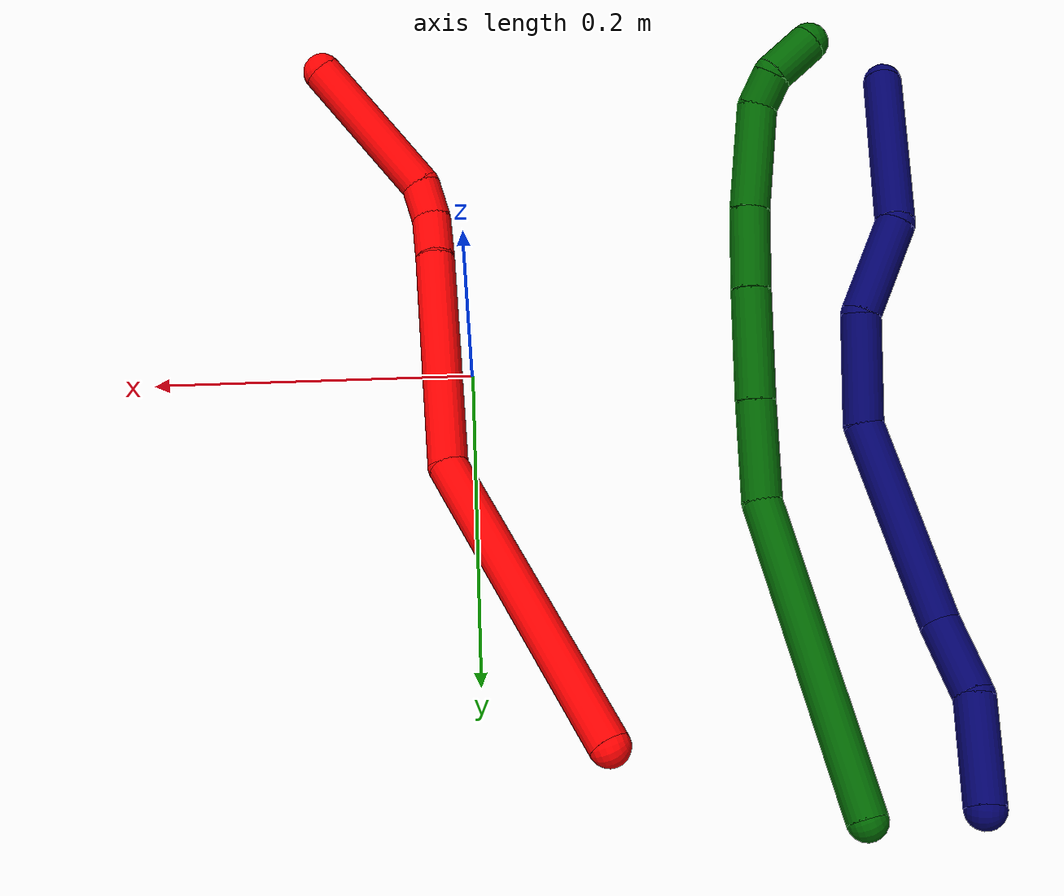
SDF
<sdf version="1.7">
 <world name="default">
  <model name="2">
   <static>0</static>
   <link name="2">
    <collision name="collision-cylinder-e_1_1_4">
     <pose>0.03027 -0.095128 0.023469 1.32892 0.299633 0.235375</pose>
     <geometry><cylinder><radius>0.0125</radius><length>0.205099</length></cylinder></geometry>
     <surface>
      <friction><ode><mu>1.16</mu><mu2>1.16</mu2><slip1>0</slip1><slip2>0</slip2></ode></friction>
      <contact><ode><kp>1e+06</kp><kd>1</kd><max_vel>0</max_vel><min_depth>0.001</min_depth></ode></contact>
     </surface>
    </collision>
    <visual name="visual-cylinder-e_1_1_4">
     <pose>0.03027 -0.095128 0.023469 1.32892 0.299633 0.235375</pose>
     <geometry><cylinder><radius>0.0125</radius><length>0.205099</length></cylinder></geometry>
     <material><ambient>1 0 0 1</ambient></material>
    </visual>
    <collision name="collision-cylinder-e_2_4_5">
     <pose>0.078178 -0.256707 0.03181 1.79462 0.253266 0.31644</pose>
     <geometry><cylinder><radius>0.0125</radius><length>0.140792</length></cylinder></geometry>
     <surface>
      <friction><ode><mu>1.16</mu><mu2>1.16</mu2><slip1>0</slip1><slip2>0</slip2></ode></friction>
      <contact><ode><kp>1e+06</kp><kd>1</kd><max_vel>0</max_vel><min_depth>0.001</min_depth></ode></contact>
     </surface>
    </collision>
    <visual name="visual-cylinder-e_2_4_5">
     <pose>0.078178 -0.256707 0.03181 1.79462 0.253266 0.31644</pose>
     <geometry><cylinder><radius>0.0125</radius><length>0.140792</length></cylinder></geometry>
     <material><ambient>1 0 0 1</ambient></material>
    </visual>
    <collision name="collision-cylinder-e_3_5_6">
     <pose>0.101157 -0.336719 0.014519 1.72908 0.370855 0.432908</pose>
     <geometry><cylinder><radius>0.0125</radius><length>0.029471</length></cylinder></geometry>
     <surface>
      <friction><ode><mu>1.16</mu><mu2>1.16</mu2><slip1>0</slip1><slip2>0</slip2></ode></friction>
      <contact><ode><kp>1e+06</kp><kd>1</kd><max_vel>0</max_vel><min_depth>0.001</min_depth></ode></contact>
     </surface>
    </collision>
    <visual name="visual-cylinder-e_3_5_6">
     <pose>0.101157 -0.336719 0.014519 1.72908 0.370855 0.432908</pose>
     <geometry><cylinder><radius>0.0125</radius><length>0.029471</length></cylinder></geometry>
     <material><ambient>1 0 0 1</ambient></material>
    </visual>
    <collision name="collision-cylinder-e_4_6_7">
     <pose>0.107379 -0.362482 0.011912 1.60698 0.072069 0.074722</pose>
     <geometry><cylinder><radius>0.0125</radius><length>0.02448</length></cylinder></geometry>
     <surface>
      <friction><ode><mu>1.16</mu><mu2>1.16</mu2><slip1>0</slip1><slip2>0</slip2></ode></friction>
      <contact><ode><kp>1e+06</kp><kd>1</kd><max_vel>0</max_vel><min_depth>0.001</min_depth></ode></contact>
     </surface>
    </collision>
    <visual name="visual-cylinder-e_4_6_7">
     <pose>0.107379 -0.362482 0.011912 1.60698 0.072069 0.074722</pose>
     <geometry><cylinder><radius>0.0125</radius><length>0.02448</length></cylinder></geometry>
     <material><ambient>1 0 0 1</ambient></material>
    </visual>
    <collision name="collision-cylinder-e_5_7_2">
     <pose>0.103815 -0.421677 0.028192 1.22894 -0.088891 -0.062742</pose>
     <geometry><cylinder><radius>0.0125</radius><length>0.100157</length></cylinder></geometry>
     <surface>
      <friction><ode><mu>1.16</mu><mu2>1.16</mu2><slip1>0</slip1><slip2>0</slip2></ode></friction>
      <contact><ode><kp>1e+06</kp><kd>1</kd><max_vel>0</max_vel><min_depth>0.001</min_depth></ode></contact>
     </surface>
    </collision>
    <visual name="visual-cylinder-e_5_7_2">
     <pose>0.103815 -0.421677 0.028192 1.22894 -0.088891 -0.062742</pose>
     <geometry><cylinder><radius>0.0125</radius><length>0.100157</length></cylinder></geometry>
     <material><ambient>1 0 0 1</ambient></material>
    </visual>
    <collision name="collision-sphere-2">
     <pose>0.099369 -0.468672 0.044914 0 -0 0</pose>
     <geometry><sphere><radius>0.0125</radius></sphere></geometry>
     <surface>
      <friction><ode><mu>1.16</mu><mu2>1.16</mu2><slip1>0</slip1><slip2>0</slip2></ode></friction>
      <contact><ode><kp>1e+06</kp><kd>1</kd><max_vel>0</max_vel><min_depth>0.001</min_depth></ode></contact>
     </surface>
    </collision>
    <visual name="visual-sphere-2">
     <pose>0.099369 -0.468672 0.044914 0 -0 0</pose>
     <geometry><sphere><radius>0.0125</radius></sphere></geometry>
     <material><ambient>1 0 0 1</ambient></material>
    </visual>
    <collision name="collision-sphere-7">
     <pose>0.10826 -0.374682 0.011471 0 -0 0</pose>
     <geometry><sphere><radius>0.0125</radius></sphere></geometry>
     <surface>
      <friction><ode><mu>1.16</mu><mu2>1.16</mu2><slip1>0</slip1><slip2>0</slip2></ode></friction>
      <contact><ode><kp>1e+06</kp><kd>1</kd><max_vel>0</max_vel><min_depth>0.001</min_depth></ode></contact>
     </surface>
    </collision>
    <visual name="visual-sphere-7">
     <pose>0.10826 -0.374682 0.011471 0 -0 0</pose>
     <geometry><sphere><radius>0.0125</radius></sphere></geometry>
     <material><ambient>1 0 0 1</ambient></material>
    </visual>
    <collision name="collision-sphere-6">
     <pose>0.106498 -0.350281 0.012354 0 -0 0</pose>
     <geometry><sphere><radius>0.0125</radius></sphere></geometry>
     <surface>
      <friction><ode><mu>1.16</mu><mu2>1.16</mu2><slip1>0</slip1><slip2>0</slip2></ode></friction>
      <contact><ode><kp>1e+06</kp><kd>1</kd><max_vel>0</max_vel><min_depth>0.001</min_depth></ode></contact>
     </surface>
    </collision>
    <visual name="visual-sphere-6">
     <pose>0.106498 -0.350281 0.012354 0 -0 0</pose>
     <geometry><sphere><radius>0.0125</radius></sphere></geometry>
     <material><ambient>1 0 0 1</ambient></material>
    </visual>
    <collision name="collision-sphere-5">
     <pose>0.095817 -0.323158 0.016683 0 -0 0</pose>
     <geometry><sphere><radius>0.0125</radius></sphere></geometry>
     <surface>
      <friction><ode><mu>1.16</mu><mu2>1.16</mu2><slip1>0</slip1><slip2>0</slip2></ode></friction>
      <contact><ode><kp>1e+06</kp><kd>1</kd><max_vel>0</max_vel><min_depth>0.001</min_depth></ode></contact>
     </surface>
    </collision>
    <visual name="visual-sphere-5">
     <pose>0.095817 -0.323158 0.016683 0 -0 0</pose>
     <geometry><sphere><radius>0.0125</radius></sphere></geometry>
     <material><ambient>1 0 0 1</ambient></material>
    </visual>
    <collision name="collision-sphere-1">
     <geometry><sphere><radius>0.0125</radius></sphere></geometry>
     <surface>
      <friction><ode><mu>1.16</mu><mu2>1.16</mu2><slip1>0</slip1><slip2>0</slip2></ode></friction>
      <contact><ode><kp>1e+06</kp><kd>1</kd><max_vel>0</max_vel><min_depth>0.001</min_depth></ode></contact>
     </surface>
    </collision>
    <visual name="visual-sphere-1">
     <geometry><sphere><radius>0.0125</radius></sphere></geometry>
     <material><ambient>1 0 0 1</ambient></material>
    </visual>
    <collision name="collision-sphere-4">
     <pose>0.060539 -0.190257 0.046937 0 -0 0</pose>
     <geometry><sphere><radius>0.0125</radius></sphere></geometry>
     <surface>
      <friction><ode><mu>1.16</mu><mu2>1.16</mu2><slip1>0</slip1><slip2>0</slip2></ode></friction>
      <contact><ode><kp>1e+06</kp><kd>1</kd><max_vel>0</max_vel><min_depth>0.001</min_depth></ode></contact>
     </surface>
    </collision>
    <visual name="visual-sphere-4">
     <pose>0.060539 -0.190257 0.046937 0 -0 0</pose>
     <geometry><sphere><radius>0.0125</radius></sphere></geometry>
     <material><ambient>1 0 0 1</ambient></material>
    </visual>
    <inertial>
     <pose>0.066446 -0.233369 0.02567 0 -0 0</pose>
     <mass>0.5</mass>
     <inertia>
      <ixx>0.001224</ixx>
      <ixy>0</ixy>
      <ixz>0</ixz>
      <iyy>0.000409</iyy>
      <iyz>0</iyz>
      <izz>0.000722</izz>
     </inertia>
    </inertial>
   </link>
   <pose>-0.071509 0.246716 0.045144 -2.56804 1.19625 -2.27744</pose>
  </model>
  <model name="6">
   <static>0</static>
   <link name="6">
    <collision name="collision-cylinder-e_1_1_4">
     <pose>0.039777 -0.089748 0.006569 1.49773 0.416199 0.387604</pose>
     <geometry><cylinder><radius>0.0125</radius><length>0.196775</length></cylinder></geometry>
     <surface>
      <friction><ode><mu>1.16</mu><mu2>1.16</mu2><slip1>0</slip1><slip2>0</slip2></ode></friction>
      <contact><ode><kp>1e+06</kp><kd>1</kd><max_vel>0</max_vel><min_depth>0.001</min_depth></ode></contact>
     </surface>
    </collision>
    <visual name="visual-cylinder-e_1_1_4">
     <pose>0.039777 -0.089748 0.006569 1.49773 0.416199 0.387604</pose>
     <geometry><cylinder><radius>0.0125</radius><length>0.196775</length></cylinder></geometry>
     <material><ambient>0 0.392157 0.003922 1</ambient></material>
    </visual>
    <collision name="collision-cylinder-e_2_4_5">
     <pose>0.095198 -0.204232 0.022876 1.19577 0.531928 0.366883</pose>
     <geometry><cylinder><radius>0.0125</radius><length>0.061691</length></cylinder></geometry>
     <surface>
      <friction><ode><mu>1.16</mu><mu2>1.16</mu2><slip1>0</slip1><slip2>0</slip2></ode></friction>
      <contact><ode><kp>1e+06</kp><kd>1</kd><max_vel>0</max_vel><min_depth>0.001</min_depth></ode></contact>
     </surface>
    </collision>
    <visual name="visual-cylinder-e_2_4_5">
     <pose>0.095198 -0.204232 0.022876 1.19577 0.531928 0.366883</pose>
     <geometry><cylinder><radius>0.0125</radius><length>0.061691</length></cylinder></geometry>
     <material><ambient>0 0.392157 0.003922 1</ambient></material>
    </visual>
    <collision name="collision-cylinder-e_3_5_6">
     <pose>0.127852 -0.256783 0.04426 1.17425 0.513568 0.345951</pose>
     <geometry><cylinder><radius>0.0125</radius><length>0.069242</length></cylinder></geometry>
     <surface>
      <friction><ode><mu>1.16</mu><mu2>1.16</mu2><slip1>0</slip1><slip2>0</slip2></ode></friction>
      <contact><ode><kp>1e+06</kp><kd>1</kd><max_vel>0</max_vel><min_depth>0.001</min_depth></ode></contact>
     </surface>
    </collision>
    <visual name="visual-cylinder-e_3_5_6">
     <pose>0.127852 -0.256783 0.04426 1.17425 0.513568 0.345951</pose>
     <geometry><cylinder><radius>0.0125</radius><length>0.069242</length></cylinder></geometry>
     <material><ambient>0 0.392157 0.003922 1</ambient></material>
    </visual>
    <collision name="collision-cylinder-e_4_6_7">
     <pose>0.156535 -0.305345 0.065009 1.15735 0.475801 0.31422</pose>
     <geometry><cylinder><radius>0.0125</radius><length>0.050972</length></cylinder></geometry>
     <surface>
      <friction><ode><mu>1.16</mu><mu2>1.16</mu2><slip1>0</slip1><slip2>0</slip2></ode></friction>
      <contact><ode><kp>1e+06</kp><kd>1</kd><max_vel>0</max_vel><min_depth>0.001</min_depth></ode></contact>
     </surface>
    </collision>
    <visual name="visual-cylinder-e_4_6_7">
     <pose>0.156535 -0.305345 0.065009 1.15735 0.475801 0.31422</pose>
     <geometry><cylinder><radius>0.0125</radius><length>0.050972</length></cylinder></geometry>
     <material><ambient>0 0.392157 0.003922 1</ambient></material>
    </visual>
    <collision name="collision-cylinder-e_5_7_8">
     <pose>0.183242 -0.352238 0.088683 1.06236 0.465436 0.276711</pose>
     <geometry><cylinder><radius>0.0125</radius><length>0.066992</length></cylinder></geometry>
     <surface>
      <friction><ode><mu>1.16</mu><mu2>1.16</mu2><slip1>0</slip1><slip2>0</slip2></ode></friction>
      <contact><ode><kp>1e+06</kp><kd>1</kd><max_vel>0</max_vel><min_depth>0.001</min_depth></ode></contact>
     </surface>
    </collision>
    <visual name="visual-cylinder-e_5_7_8">
     <pose>0.183242 -0.352238 0.088683 1.06236 0.465436 0.276711</pose>
     <geometry><cylinder><radius>0.0125</radius><length>0.066992</length></cylinder></geometry>
     <material><ambient>0 0.392157 0.003922 1</ambient></material>
    </visual>
    <collision name="collision-cylinder-e_6_8_9">
     <pose>0.203704 -0.383526 0.111391 0.563563 0.513551 0.151729</pose>
     <geometry><cylinder><radius>0.0125</radius><length>0.022101</length></cylinder></geometry>
     <surface>
      <friction><ode><mu>1.16</mu><mu2>1.16</mu2><slip1>0</slip1><slip2>0</slip2></ode></friction>
      <contact><ode><kp>1e+06</kp><kd>1</kd><max_vel>0</max_vel><min_depth>0.001</min_depth></ode></contact>
     </surface>
    </collision>
    <visual name="visual-cylinder-e_6_8_9">
     <pose>0.203704 -0.383526 0.111391 0.563563 0.513551 0.151729</pose>
     <geometry><cylinder><radius>0.0125</radius><length>0.022101</length></cylinder></geometry>
     <material><ambient>0 0.392157 0.003922 1</ambient></material>
    </visual>
    <collision name="collision-cylinder-e_7_9_2">
     <pose>0.209528 -0.395737 0.134002 0.454326 0.024493 0.005662</pose>
     <geometry><cylinder><radius>0.0125</radius><length>0.032227</length></cylinder></geometry>
     <surface>
      <friction><ode><mu>1.16</mu><mu2>1.16</mu2><slip1>0</slip1><slip2>0</slip2></ode></friction>
      <contact><ode><kp>1e+06</kp><kd>1</kd><max_vel>0</max_vel><min_depth>0.001</min_depth></ode></contact>
     </surface>
    </collision>
    <visual name="visual-cylinder-e_7_9_2">
     <pose>0.209528 -0.395737 0.134002 0.454326 0.024493 0.005662</pose>
     <geometry><cylinder><radius>0.0125</radius><length>0.032227</length></cylinder></geometry>
     <material><ambient>0 0.392157 0.003922 1</ambient></material>
    </visual>
    <collision name="collision-sphere-2">
     <pose>0.209922 -0.402806 0.148477 0 -0 0</pose>
     <geometry><sphere><radius>0.0125</radius></sphere></geometry>
     <surface>
      <friction><ode><mu>1.16</mu><mu2>1.16</mu2><slip1>0</slip1><slip2>0</slip2></ode></friction>
      <contact><ode><kp>1e+06</kp><kd>1</kd><max_vel>0</max_vel><min_depth>0.001</min_depth></ode></contact>
     </surface>
    </collision>
    <visual name="visual-sphere-2">
     <pose>0.209922 -0.402806 0.148477 0 -0 0</pose>
     <geometry><sphere><radius>0.0125</radius></sphere></geometry>
     <material><ambient>0 0.392157 0.003922 1</ambient></material>
    </visual>
    <collision name="collision-sphere-9">
     <pose>0.209133 -0.388668 0.119528 0 -0 0</pose>
     <geometry><sphere><radius>0.0125</radius></sphere></geometry>
     <surface>
      <friction><ode><mu>1.16</mu><mu2>1.16</mu2><slip1>0</slip1><slip2>0</slip2></ode></friction>
      <contact><ode><kp>1e+06</kp><kd>1</kd><max_vel>0</max_vel><min_depth>0.001</min_depth></ode></contact>
     </surface>
    </collision>
    <visual name="visual-sphere-9">
     <pose>0.209133 -0.388668 0.119528 0 -0 0</pose>
     <geometry><sphere><radius>0.0125</radius></sphere></geometry>
     <material><ambient>0 0.392157 0.003922 1</ambient></material>
    </visual>
    <collision name="collision-sphere-4">
     <pose>0.079553 -0.179496 0.013139 0 -0 0</pose>
     <geometry><sphere><radius>0.0125</radius></sphere></geometry>
     <surface>
      <friction><ode><mu>1.16</mu><mu2>1.16</mu2><slip1>0</slip1><slip2>0</slip2></ode></friction>
      <contact><ode><kp>1e+06</kp><kd>1</kd><max_vel>0</max_vel><min_depth>0.001</min_depth></ode></contact>
     </surface>
    </collision>
    <visual name="visual-sphere-4">
     <pose>0.079553 -0.179496 0.013139 0 -0 0</pose>
     <geometry><sphere><radius>0.0125</radius></sphere></geometry>
     <material><ambient>0 0.392157 0.003922 1</ambient></material>
    </visual>
    <collision name="collision-sphere-1">
     <geometry><sphere><radius>0.0125</radius></sphere></geometry>
     <surface>
      <friction><ode><mu>1.16</mu><mu2>1.16</mu2><slip1>0</slip1><slip2>0</slip2></ode></friction>
      <contact><ode><kp>1e+06</kp><kd>1</kd><max_vel>0</max_vel><min_depth>0.001</min_depth></ode></contact>
     </surface>
    </collision>
    <visual name="visual-sphere-1">
     <geometry><sphere><radius>0.0125</radius></sphere></geometry>
     <material><ambient>0 0.392157 0.003922 1</ambient></material>
    </visual>
    <collision name="collision-sphere-8">
     <pose>0.198275 -0.378384 0.103255 0 -0 0</pose>
     <geometry><sphere><radius>0.0125</radius></sphere></geometry>
     <surface>
      <friction><ode><mu>1.16</mu><mu2>1.16</mu2><slip1>0</slip1><slip2>0</slip2></ode></friction>
      <contact><ode><kp>1e+06</kp><kd>1</kd><max_vel>0</max_vel><min_depth>0.001</min_depth></ode></contact>
     </surface>
    </collision>
    <visual name="visual-sphere-8">
     <pose>0.198275 -0.378384 0.103255 0 -0 0</pose>
     <geometry><sphere><radius>0.0125</radius></sphere></geometry>
     <material><ambient>0 0.392157 0.003922 1</ambient></material>
    </visual>
    <collision name="collision-sphere-5">
     <pose>0.110843 -0.228968 0.032613 0 -0 0</pose>
     <geometry><sphere><radius>0.0125</radius></sphere></geometry>
     <surface>
      <friction><ode><mu>1.16</mu><mu2>1.16</mu2><slip1>0</slip1><slip2>0</slip2></ode></friction>
      <contact><ode><kp>1e+06</kp><kd>1</kd><max_vel>0</max_vel><min_depth>0.001</min_depth></ode></contact>
     </surface>
    </collision>
    <visual name="visual-sphere-5">
     <pose>0.110843 -0.228968 0.032613 0 -0 0</pose>
     <geometry><sphere><radius>0.0125</radius></sphere></geometry>
     <material><ambient>0 0.392157 0.003922 1</ambient></material>
    </visual>
    <collision name="collision-sphere-6">
     <pose>0.144861 -0.284598 0.055907 0 -0 0</pose>
     <geometry><sphere><radius>0.0125</radius></sphere></geometry>
     <surface>
      <friction><ode><mu>1.16</mu><mu2>1.16</mu2><slip1>0</slip1><slip2>0</slip2></ode></friction>
      <contact><ode><kp>1e+06</kp><kd>1</kd><max_vel>0</max_vel><min_depth>0.001</min_depth></ode></contact>
     </surface>
    </collision>
    <visual name="visual-sphere-6">
     <pose>0.144861 -0.284598 0.055907 0 -0 0</pose>
     <geometry><sphere><radius>0.0125</radius></sphere></geometry>
     <material><ambient>0 0.392157 0.003922 1</ambient></material>
    </visual>
    <collision name="collision-sphere-7">
     <pose>0.168209 -0.326091 0.074111 0 -0 0</pose>
     <geometry><sphere><radius>0.0125</radius></sphere></geometry>
     <surface>
      <friction><ode><mu>1.16</mu><mu2>1.16</mu2><slip1>0</slip1><slip2>0</slip2></ode></friction>
      <contact><ode><kp>1e+06</kp><kd>1</kd><max_vel>0</max_vel><min_depth>0.001</min_depth></ode></contact>
     </surface>
    </collision>
    <visual name="visual-sphere-7">
     <pose>0.168209 -0.326091 0.074111 0 -0 0</pose>
     <geometry><sphere><radius>0.0125</radius></sphere></geometry>
     <material><ambient>0 0.392157 0.003922 1</ambient></material>
    </visual>
    <inertial>
     <pose>0.108124 -0.216861 0.043607 0 -0 0</pose>
     <mass>0.5</mass>
     <inertia>
      <ixx>0.000892</ixx>
      <ixy>0</ixy>
      <ixz>0</ixz>
      <iyy>0.000413</iyy>
      <iyz>0</iyz>
      <izz>0.000369</izz>
     </inertia>
    </inertial>
   </link>
   <pose>-0.217941 0.287982 0.011499 1.03046 -1.11685 -0.783943</pose>
  </model>
  <model name="7">
   <static>0</static>
   <link name="7">
    <collision name="collision-cylinder-e_1_1_4">
     <pose>0.001734 -0.031617 -0.007526 1.80449 0.053292 0.067457</pose>
     <geometry><cylinder><radius>0.0125</radius><length>0.065093</length></cylinder></geometry>
     <surface>
      <friction><ode><mu>1.16</mu><mu2>1.16</mu2><slip1>0</slip1><slip2>0</slip2></ode></friction>
      <contact><ode><kp>1e+06</kp><kd>1</kd><max_vel>0</max_vel><min_depth>0.001</min_depth></ode></contact>
     </surface>
    </collision>
    <visual name="visual-cylinder-e_1_1_4">
     <pose>0.001734 -0.031617 -0.007526 1.80449 0.053292 0.067457</pose>
     <geometry><cylinder><radius>0.0125</radius><length>0.065093</length></cylinder></geometry>
     <material><ambient>0.003922 0 0.403922 1</ambient></material>
    </visual>
    <collision name="collision-cylinder-e_2_4_5">
     <pose>0.002874 -0.084153 -0.028847 2.15375 -0.023688 -0.04399</pose>
     <geometry><cylinder><radius>0.0125</radius><length>0.050131</length></cylinder></geometry>
     <surface>
      <friction><ode><mu>1.16</mu><mu2>1.16</mu2><slip1>0</slip1><slip2>0</slip2></ode></friction>
      <contact><ode><kp>1e+06</kp><kd>1</kd><max_vel>0</max_vel><min_depth>0.001</min_depth></ode></contact>
     </surface>
    </collision>
    <visual name="visual-cylinder-e_2_4_5">
     <pose>0.002874 -0.084153 -0.028847 2.15375 -0.023688 -0.04399</pose>
     <geometry><cylinder><radius>0.0125</radius><length>0.050131</length></cylinder></geometry>
     <material><ambient>0.003922 0 0.403922 1</ambient></material>
    </visual>
    <collision name="collision-cylinder-e_3_5_6">
     <pose>0.020503 -0.160827 -0.070304 2.03136 0.284832 0.454429</pose>
     <geometry><cylinder><radius>0.0125</radius><length>0.129705</length></cylinder></geometry>
     <surface>
      <friction><ode><mu>1.16</mu><mu2>1.16</mu2><slip1>0</slip1><slip2>0</slip2></ode></friction>
      <contact><ode><kp>1e+06</kp><kd>1</kd><max_vel>0</max_vel><min_depth>0.001</min_depth></ode></contact>
     </surface>
    </collision>
    <visual name="visual-cylinder-e_3_5_6">
     <pose>0.020503 -0.160827 -0.070304 2.03136 0.284832 0.454429</pose>
     <geometry><cylinder><radius>0.0125</radius><length>0.129705</length></cylinder></geometry>
     <material><ambient>0.003922 0 0.403922 1</ambient></material>
    </visual>
    <collision name="collision-cylinder-e_4_6_7">
     <pose>0.050622 -0.248534 -0.10039 1.64651 0.355439 0.382771</pose>
     <geometry><cylinder><radius>0.0125</radius><length>0.068364</length></cylinder></geometry>
     <surface>
      <friction><ode><mu>1.16</mu><mu2>1.16</mu2><slip1>0</slip1><slip2>0</slip2></ode></friction>
      <contact><ode><kp>1e+06</kp><kd>1</kd><max_vel>0</max_vel><min_depth>0.001</min_depth></ode></contact>
     </surface>
    </collision>
    <visual name="visual-cylinder-e_4_6_7">
     <pose>0.050622 -0.248534 -0.10039 1.64651 0.355439 0.382771</pose>
     <geometry><cylinder><radius>0.0125</radius><length>0.068364</length></cylinder></geometry>
     <material><ambient>0.003922 0 0.403922 1</ambient></material>
    </visual>
    <collision name="collision-cylinder-e_5_7_8">
     <pose>0.062517 -0.312029 -0.09711 1.39188 -3e-06 -3e-06</pose>
     <geometry><cylinder><radius>0.0125</radius><length>0.064106</length></cylinder></geometry>
     <surface>
      <friction><ode><mu>1.16</mu><mu2>1.16</mu2><slip1>0</slip1><slip2>0</slip2></ode></friction>
      <contact><ode><kp>1e+06</kp><kd>1</kd><max_vel>0</max_vel><min_depth>0.001</min_depth></ode></contact>
     </surface>
    </collision>
    <visual name="visual-cylinder-e_5_7_8">
     <pose>0.062517 -0.312029 -0.09711 1.39188 -3e-06 -3e-06</pose>
     <geometry><cylinder><radius>0.0125</radius><length>0.064106</length></cylinder></geometry>
     <material><ambient>0.003922 0 0.403922 1</ambient></material>
    </visual>
    <collision name="collision-cylinder-e_6_8_2">
     <pose>0.05443 -0.401858 -0.108581 1.85735 -0.132305 -0.176712</pose>
     <geometry><cylinder><radius>0.0125</radius><length>0.122603</length></cylinder></geometry>
     <surface>
      <friction><ode><mu>1.16</mu><mu2>1.16</mu2><slip1>0</slip1><slip2>0</slip2></ode></friction>
      <contact><ode><kp>1e+06</kp><kd>1</kd><max_vel>0</max_vel><min_depth>0.001</min_depth></ode></contact>
     </surface>
    </collision>
    <visual name="visual-cylinder-e_6_8_2">
     <pose>0.05443 -0.401858 -0.108581 1.85735 -0.132305 -0.176712</pose>
     <geometry><cylinder><radius>0.0125</radius><length>0.122603</length></cylinder></geometry>
     <material><ambient>0.003922 0 0.403922 1</ambient></material>
    </visual>
    <collision name="collision-sphere-2">
     <pose>0.046343 -0.460146 -0.125756 0 -0 0</pose>
     <geometry><sphere><radius>0.0125</radius></sphere></geometry>
     <surface>
      <friction><ode><mu>1.16</mu><mu2>1.16</mu2><slip1>0</slip1><slip2>0</slip2></ode></friction>
      <contact><ode><kp>1e+06</kp><kd>1</kd><max_vel>0</max_vel><min_depth>0.001</min_depth></ode></contact>
     </surface>
    </collision>
    <visual name="visual-sphere-2">
     <pose>0.046343 -0.460146 -0.125756 0 -0 0</pose>
     <geometry><sphere><radius>0.0125</radius></sphere></geometry>
     <material><ambient>0.003922 0 0.403922 1</ambient></material>
    </visual>
    <collision name="collision-sphere-4">
     <pose>0.003467 -0.063233 -0.015052 0 -0 0</pose>
     <geometry><sphere><radius>0.0125</radius></sphere></geometry>
     <surface>
      <friction><ode><mu>1.16</mu><mu2>1.16</mu2><slip1>0</slip1><slip2>0</slip2></ode></friction>
      <contact><ode><kp>1e+06</kp><kd>1</kd><max_vel>0</max_vel><min_depth>0.001</min_depth></ode></contact>
     </surface>
    </collision>
    <visual name="visual-sphere-4">
     <pose>0.003467 -0.063233 -0.015052 0 -0 0</pose>
     <geometry><sphere><radius>0.0125</radius></sphere></geometry>
     <material><ambient>0.003922 0 0.403922 1</ambient></material>
    </visual>
    <collision name="collision-sphere-1">
     <geometry><sphere><radius>0.0125</radius></sphere></geometry>
     <surface>
      <friction><ode><mu>1.16</mu><mu2>1.16</mu2><slip1>0</slip1><slip2>0</slip2></ode></friction>
      <contact><ode><kp>1e+06</kp><kd>1</kd><max_vel>0</max_vel><min_depth>0.001</min_depth></ode></contact>
     </surface>
    </collision>
    <visual name="visual-sphere-1">
     <geometry><sphere><radius>0.0125</radius></sphere></geometry>
     <material><ambient>0.003922 0 0.403922 1</ambient></material>
    </visual>
    <collision name="collision-sphere-8">
     <pose>0.062517 -0.34357 -0.091406 0 -0 0</pose>
     <geometry><sphere><radius>0.0125</radius></sphere></geometry>
     <surface>
      <friction><ode><mu>1.16</mu><mu2>1.16</mu2><slip1>0</slip1><slip2>0</slip2></ode></friction>
      <contact><ode><kp>1e+06</kp><kd>1</kd><max_vel>0</max_vel><min_depth>0.001</min_depth></ode></contact>
     </surface>
    </collision>
    <visual name="visual-sphere-8">
     <pose>0.062517 -0.34357 -0.091406 0 -0 0</pose>
     <geometry><sphere><radius>0.0125</radius></sphere></geometry>
     <material><ambient>0.003922 0 0.403922 1</ambient></material>
    </visual>
    <collision name="collision-sphere-5">
     <pose>0.00228 -0.105072 -0.042641 0 -0 0</pose>
     <geometry><sphere><radius>0.0125</radius></sphere></geometry>
     <surface>
      <friction><ode><mu>1.16</mu><mu2>1.16</mu2><slip1>0</slip1><slip2>0</slip2></ode></friction>
      <contact><ode><kp>1e+06</kp><kd>1</kd><max_vel>0</max_vel><min_depth>0.001</min_depth></ode></contact>
     </surface>
    </collision>
    <visual name="visual-sphere-5">
     <pose>0.00228 -0.105072 -0.042641 0 -0 0</pose>
     <geometry><sphere><radius>0.0125</radius></sphere></geometry>
     <material><ambient>0.003922 0 0.403922 1</ambient></material>
    </visual>
    <collision name="collision-sphere-6">
     <pose>0.038726 -0.216581 -0.097966 0 -0 0</pose>
     <geometry><sphere><radius>0.0125</radius></sphere></geometry>
     <surface>
      <friction><ode><mu>1.16</mu><mu2>1.16</mu2><slip1>0</slip1><slip2>0</slip2></ode></friction>
      <contact><ode><kp>1e+06</kp><kd>1</kd><max_vel>0</max_vel><min_depth>0.001</min_depth></ode></contact>
     </surface>
    </collision>
    <visual name="visual-sphere-6">
     <pose>0.038726 -0.216581 -0.097966 0 -0 0</pose>
     <geometry><sphere><radius>0.0125</radius></sphere></geometry>
     <material><ambient>0.003922 0 0.403922 1</ambient></material>
    </visual>
    <collision name="collision-sphere-7">
     <pose>0.062517 -0.280488 -0.102815 0 -0 0</pose>
     <geometry><sphere><radius>0.0125</radius></sphere></geometry>
     <surface>
      <friction><ode><mu>1.16</mu><mu2>1.16</mu2><slip1>0</slip1><slip2>0</slip2></ode></friction>
      <contact><ode><kp>1e+06</kp><kd>1</kd><max_vel>0</max_vel><min_depth>0.001</min_depth></ode></contact>
     </surface>
    </collision>
    <visual name="visual-sphere-7">
     <pose>0.062517 -0.280488 -0.102815 0 -0 0</pose>
     <geometry><sphere><radius>0.0125</radius></sphere></geometry>
     <material><ambient>0.003922 0 0.403922 1</ambient></material>
    </visual>
    <inertial>
     <pose>0.034116 -0.226798 -0.074911 0 -0 0</pose>
     <mass>0.5</mass>
     <inertia>
      <ixx>0.00047</ixx>
      <ixy>0</ixy>
      <ixz>0</ixz>
      <iyy>-7.4e-05</iyy>
      <iyz>0</iyz>
      <izz>0.000345</izz>
     </inertia>
    </inertial>
   </link>
   <pose>-0.28185 0.286563 0.02871 -0.042121 -1.06793 -0.232332</pose>
  </model>
 </world>
</sdf>
